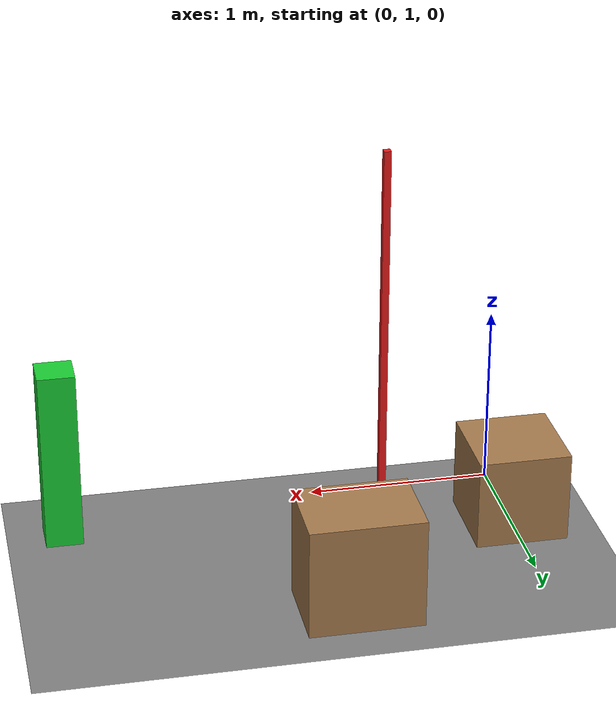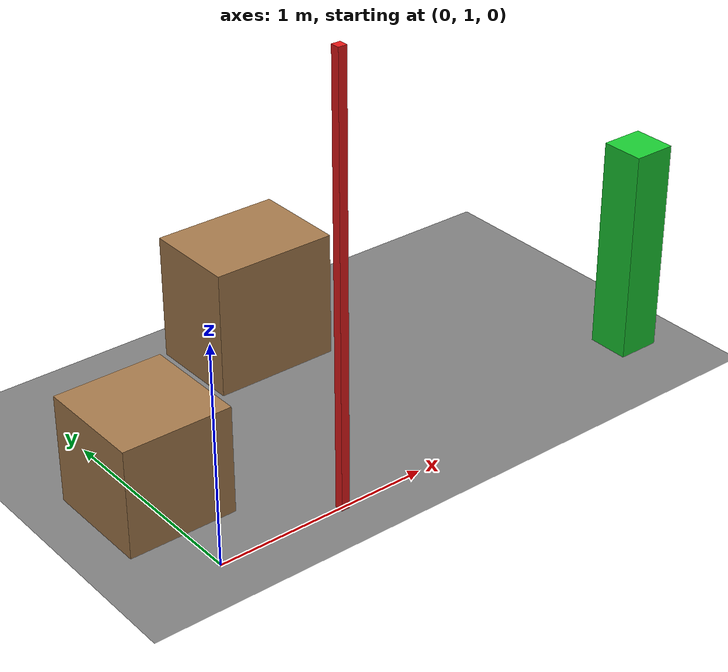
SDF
<sdf version="1.9">
 <world name="ecps295_camtest">
  <model name="ground_plane">
   <static>true</static>
   <link name="link">
    <collision name="collision">
     <geometry><plane><normal>0 0 1</normal><size>50 50</size></plane></geometry>
    </collision>
    <visual name="visual">
     <geometry><plane><normal>0 0 1</normal><size>50 50</size></plane></geometry>
     <material><ambient>0.5 0.5 0.5 1</ambient><diffuse>0.5 0.5 0.5 1</diffuse></material>
    </visual>
   </link>
  </model>
  <model name="box_a">
   <static>true</static>
   <pose>0.0 1.5 0.25 0 0 0</pose>
   <link name="link">
    <collision name="c"><geometry><box><size>0.5 0.5 0.5</size></box></geometry></collision>
    <visual name="v">
     <geometry><box><size>0.5 0.5 0.5</size></box></geometry>
     <material><ambient>0.65 0.48 0.30 1</ambient><diffuse>0.65 0.48 0.30 1</diffuse></material>
    </visual>
   </link>
  </model>
  <model name="box_b">
   <static>true</static>
   <pose>1.0 2.2 0.3 0 0 0</pose>
   <link name="link">
    <collision name="c"><geometry><box><size>0.6 0.45 0.6</size></box></geometry></collision>
    <visual name="v">
     <geometry><box><size>0.6 0.45 0.6</size></box></geometry>
     <material><ambient>0.65 0.48 0.30 1</ambient><diffuse>0.65 0.48 0.30 1</diffuse></material>
    </visual>
   </link>
  </model>
  <model name="pole">
   <static>true</static>
   <pose>0.6 1.0 1.0 0 0 0</pose>
   <link name="link">
    <collision name="c"><geometry><box><size>0.04 0.04 2.0</size></box></geometry></collision>
    <visual name="v">
     <geometry><box><size>0.04 0.04 2.0</size></box></geometry>
     <material><ambient>0.90 0.10 0.10 1</ambient><diffuse>0.90 0.10 0.10 1</diffuse></material>
    </visual>
   </link>
  </model>
  <model name="marker_right">
   <static>true</static>
   <pose>2.4 1.2 0.5 0 0 0</pose>
   <link name="link">
    <collision name="c"><geometry><box><size>0.2 0.2 1.0</size></box></geometry></collision>
    <visual name="v">
     <geometry><box><size>0.2 0.2 1.0</size></box></geometry>
     <material><ambient>0.10 0.80 0.20 1</ambient><diffuse>0.10 0.80 0.20 1</diffuse></material>
    </visual>
   </link>
  </model>
 </world>
</sdf>
